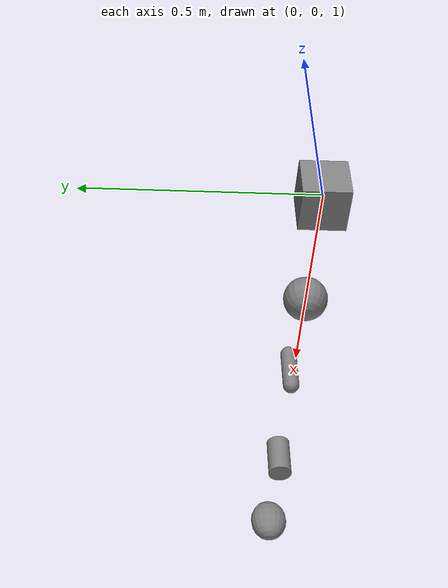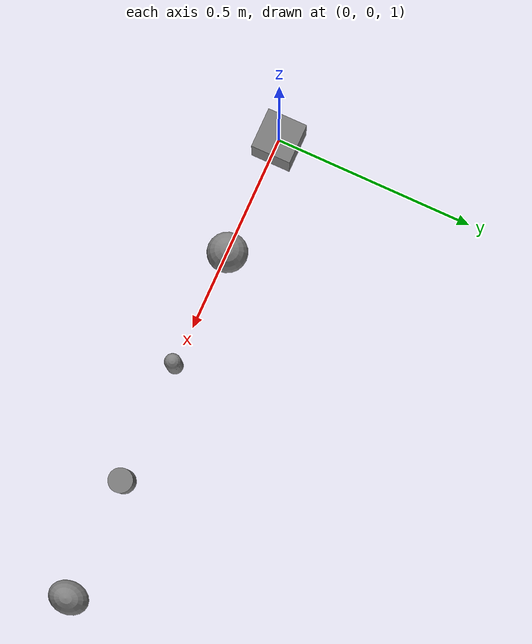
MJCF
<mujoco model="joints_all_types">
  <!-- Covers: every joint type - free, ball, slide, hinge - plus a body with
       two joints (hinge+slide compound) and joint ranges/limits. -->
  <compiler angle="radian"/>
  <worldbody>
    <body name="free_body" pos="0 0 1">
      <freejoint name="free_j"/>
      <geom name="free_g" type="box" size="0.05 0.05 0.05"/>
    </body>
    <body name="ball_body" pos="0.3 0 1">
      <joint name="ball_j" type="ball"/>
      <geom name="ball_g" type="sphere" size="0.05"/>
    </body>
    <body name="slide_body" pos="0.6 0 1">
      <joint name="slide_j" type="slide" axis="0 0 1" range="-0.2 0.2" limited="true"/>
      <geom name="slide_g" type="capsule" size="0.02" fromto="0 0 0 0 0 0.1"/>
    </body>
    <body name="hinge_body" pos="0.9 0 1">
      <joint name="hinge_j" type="hinge" axis="0 1 0" range="-1.0 1.0" limited="true"/>
      <geom name="hinge_g" type="cylinder" size="0.03 0.05"/>
    </body>
    <body name="compound" pos="1.2 0 1">
      <joint name="cmp_slide" type="slide" axis="1 0 0"/>
      <joint name="cmp_hinge" type="hinge" axis="0 0 1"/>
      <geom name="cmp_g" type="ellipsoid" size="0.04 0.05 0.06"/>
    </body>
  </worldbody>
</mujoco>
